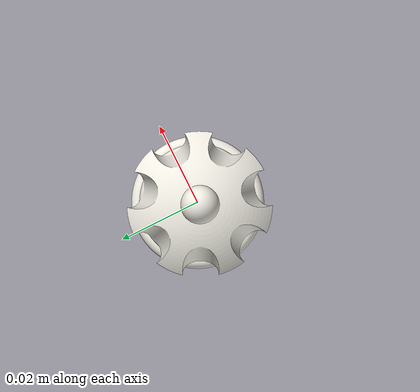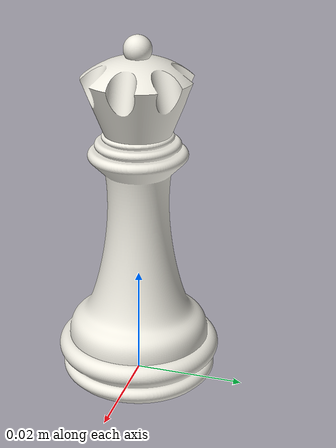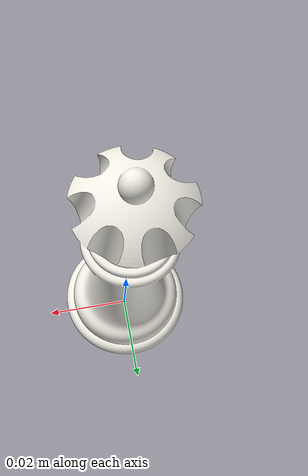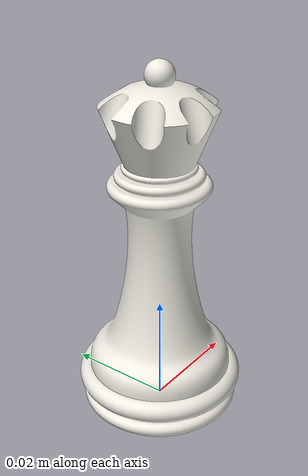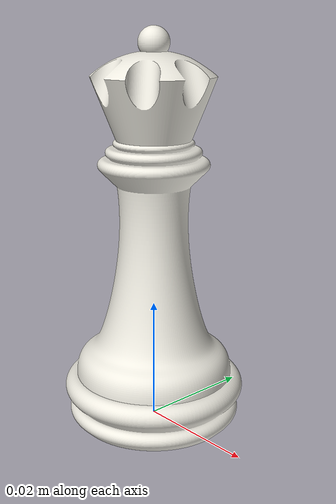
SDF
<?xml version="1.0"?>
<sdf version="1.9">
  <model name="white_queen">
    <static>false</static>
    <link name="piece">
      <inertial>
        <mass>0.060</mass>
        <inertia>
          <ixx>0.000020</ixx>
          <iyy>0.000020</iyy>
          <izz>0.000012</izz>
        </inertia>
      </inertial>
      <collision name="collision">
        <pose>0 0 0.0325 0 0 0</pose>
        <geometry>
          <cylinder>
            <radius>0.016</radius>
            <length>0.065</length>
          </cylinder>
        </geometry>
      </collision>
      <visual name="visual">
        <geometry>
          <mesh>
            <uri>model://chess_piece_meshes/meshes/queen.stl</uri>
            <scale>0.001 0.001 0.001</scale>
          </mesh>
        </geometry>
        <material>
          <ambient>0.93 0.92 0.88 1</ambient>
          <diffuse>0.93 0.92 0.88 1</diffuse>
          <specular>0.20 0.20 0.20 1</specular>
        </material>
      </visual>
    </link>
  </model>
</sdf>
